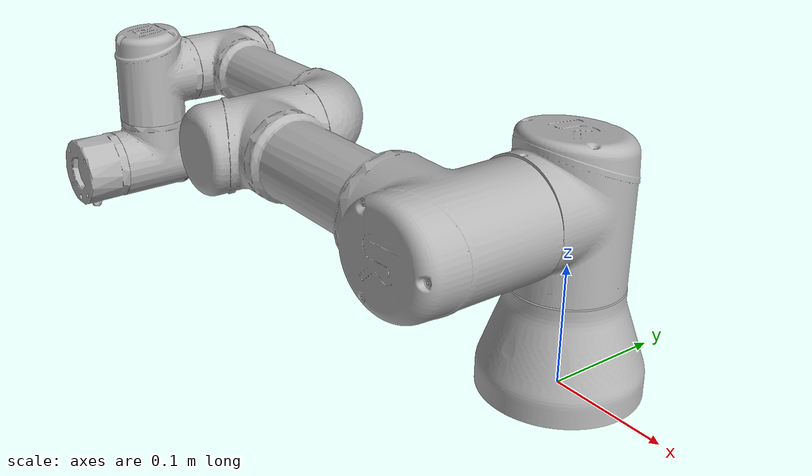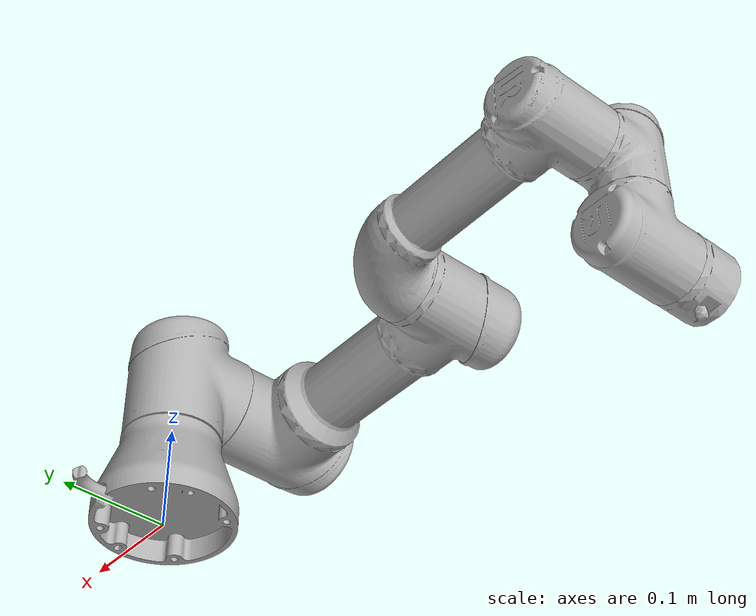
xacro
<?xml version="1.0"?>
<robot xmlns:xacro="http://www.ros.org/wiki/xacro" name="READY_UR3" >
  <!-- common stuff -->
  <xacro:include filename="$(find ur_description)/urdf/common.gazebo.xacro" />

  <!-- ur3 -->
  <xacro:include filename="$(find ur_description)/urdf/ur3.urdf.xacro" />

  <!-- arm -->
  <xacro:ur3_robot prefix="" joint_limited="false"/>
</robot>

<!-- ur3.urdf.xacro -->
<robot xmlns:xacro="http://www.ros.org/wiki/xacro">

<!--
  Author: Felix Messmer
-->

  <xacro:include filename="$(find ur_description)/urdf/ur.transmission.xacro" />
  <xacro:include filename="$(find ur_description)/urdf/ur.gazebo.xacro" />

  <property name="pi" value="3.14159265" />

  <!-- Inertia parameters -->
  <property name="base_mass" value="2.0" />  <!-- This mass might be incorrect -->
  <property name="shoulder_mass" value="2.0" />
  <property name="upper_arm_mass" value="3.42" />
  <property name="forearm_mass" value="1.26" />
  <property name="wrist_1_mass" value="0.8" />
  <property name="wrist_2_mass" value="0.8" />
  <property name="wrist_3_mass" value="0.35" />

  <property name="shoulder_cog" value="0.0 -0.02 0.0" />
  <property name="upper_arm_cog" value="0.13 0.0 0.1157" />
  <property name="forearm_cog" value="0.05 0.0 0.0238" />
  <property name="wrist_1_cog" value="0.0 0.0 0.01" />
  <property name="wrist_2_cog" value="0.0 0.0 0.01" />
  <property name="wrist_3_cog" value="0.0 0.0 -0.02" />

  <!-- Kinematic model -->
  <!-- Properties from urcontrol.conf -->
  <property name="ur3_d1" value="0.1519" />
  <property name="ur3_a2" value="-0.24365" />
  <property name="ur3_a3" value="-0.21325" />
  <property name="ur3_d4" value="0.11235" />
  <property name="ur3_d5" value="0.08535" />
  <property name="ur3_d6" value="0.0819" />

  <!-- Arbitrary offsets for shoulder/elbow joints -->
  <property name="shoulder_offset" value="0.1198" />  <!-- measured from model -->
  <property name="elbow_offset" value="-0.0925" /> <!-- measured from model -->

  <!-- link lengths used in model -->
  <property name="shoulder_height" value="${ur3_d1}" />
  <property name="upper_arm_length" value="${-ur3_a2}" />
  <property name="forearm_length" value="${-ur3_a3}" />
  <property name="wrist_1_length" value="${ur3_d4 - elbow_offset - shoulder_offset}" />
  <property name="wrist_2_length" value="${ur3_d5}" />
  <property name="wrist_3_length" value="${ur3_d6}" />

  <xacro:macro name="cylinder_inertial" params="radius length mass *origin">
    <inertial>
      <mass value="${mass}" />
      <insert_block name="origin" />
      <inertia ixx="${0.0833333 * mass * (3 * radius * radius + length * length)}" ixy="0.0" ixz="0.0"
        iyy="${0.0833333 * mass * (3 * radius * radius + length * length)}" iyz="0.0"
        izz="${0.5 * mass * radius * radius}" />
    </inertial>
  </xacro:macro>

  <xacro:macro name="ur3_robot" params="prefix joint_limited">

    <link name="${prefix}base_link" >
      <visual>
        <geometry>
          <mesh filename="package://ur_description/meshes/ur3/visual/base.dae"/>
        </geometry>
        <material name="LightGrey">
          <color rgba="0.7 0.7 0.7 1.0"/>
        </material>
      </visual>
      <collision>
        <geometry>
          <mesh filename="package://ur_description/meshes/ur3/collision/base.stl"/>
        </geometry>
      </collision>
      <xacro:cylinder_inertial radius="0.075" length="0.038" mass="${base_mass}">
        <origin xyz="0.0 0.0 0.0" rpy="0 0 0" />
      </xacro:cylinder_inertial>
    </link>

    <joint name="${prefix}shoulder_pan_joint" type="revolute">
      <parent link="${prefix}base_link" />
      <child link = "${prefix}shoulder_link" />
      <origin xyz="0.0 0.0 ${shoulder_height}" rpy="0.0 0.0 0.0" />
      <axis xyz="0 0 1" />
      <xacro:unless value="${joint_limited}">
        <limit lower="${-2.0 * pi}" upper="${2.0 * pi}" effort="330.0" velocity="2.16"/>
      </xacro:unless>
      <xacro:if value="${joint_limited}">
        <limit lower="${-pi}" upper="${pi}" effort="330.0" velocity="2.16"/>
      </xacro:if>
      <dynamics damping="0.0" friction="0.0"/>
    </joint>

    <link name="${prefix}shoulder_link">
      <visual>
        <geometry>
          <mesh filename="package://ur_description/meshes/ur3/visual/shoulder.dae"/>
        </geometry>
        <material name="LightGrey">
          <color rgba="0.7 0.7 0.7 1.0"/>
        </material>
      </visual>
      <collision>
        <geometry>
          <mesh filename="package://ur_description/meshes/ur3/collision/shoulder.stl"/>
        </geometry>
      </collision>
      <xacro:cylinder_inertial radius="0.075" length="0.178" mass="${shoulder_mass}">
        <origin xyz="0.0 0.0 0.0" rpy="0 0 0" />
      </xacro:cylinder_inertial>
    </link>

    <joint name="${prefix}shoulder_lift_joint" type="revolute">
      <parent link="${prefix}shoulder_link" />
      <child link = "${prefix}upper_arm_link" />
      <origin xyz="0.0 ${shoulder_offset} 0.0" rpy="0.0 ${pi / 2.0} 0.0" />
      <axis xyz="0 1 0" />
      <xacro:unless value="${joint_limited}">
        <limit lower="${-2.0 * pi}" upper="${2.0 * pi}" effort="330.0" velocity="2.16"/>
      </xacro:unless>
      <xacro:if value="${joint_limited}">
        <limit lower="${-pi}" upper="${pi}" effort="330.0" velocity="2.16"/>
      </xacro:if>
      <dynamics damping="0.0" friction="0.0"/>
    </joint>

    <link name="${prefix}upper_arm_link">
      <visual>
        <geometry>
          <mesh filename="package://ur_description/meshes/ur3/visual/upperarm.dae"/>
        </geometry>
        <material name="LightGrey">
          <color rgba="0.7 0.7 0.7 1.0"/>
        </material>
      </visual>
      <collision>
        <geometry>
          <mesh filename="package://ur_description/meshes/ur3/collision/upperarm.stl"/>
        </geometry>
      </collision>
      <xacro:cylinder_inertial radius="0.075" length="${-ur3_a2}" mass="${upper_arm_mass}">
        <origin xyz="0.0 0.0 ${-ur3_a2/2.0}" rpy="0 0 0" />
      </xacro:cylinder_inertial>
    </link>

    <joint name="${prefix}elbow_joint" type="revolute">
      <parent link="${prefix}upper_arm_link" />
      <child link = "${prefix}forearm_link" />
      <origin xyz="0.0 ${elbow_offset} ${upper_arm_length}" rpy="0.0 0.0 0.0" />
      <axis xyz="0 1 0" />
      <xacro:unless value="${joint_limited}">
        <limit lower="${-2.0 * pi}" upper="${2.0 * pi}" effort="150.0" velocity="3.15"/>
      </xacro:unless>
      <xacro:if value="${joint_limited}">
        <limit lower="${-pi}" upper="${pi}" effort="150.0" velocity="3.15"/>
      </xacro:if>
      <dynamics damping="0.0" friction="0.0"/>
    </joint>

    <link name="${prefix}forearm_link">
      <visual>
         <geometry>
          <mesh filename="package://ur_description/meshes/ur3/visual/forearm.dae"/>
        </geometry>
        <material name="LightGrey">
          <color rgba="0.7 0.7 0.7 1.0"/>
        </material>
      </visual>
      <collision>
        <geometry>
          <mesh filename="package://ur_description/meshes/ur3/collision/forearm.stl"/>
        </geometry>
      </collision>
      <xacro:cylinder_inertial radius="0.075" length="${-ur3_a3}" mass="${forearm_mass}">
        <origin xyz="0.0 0.0 ${-ur3_a3/2.0}" rpy="0 0 0" />
      </xacro:cylinder_inertial>
    </link>

    <joint name="${prefix}wrist_1_joint" type="revolute">
      <parent link="${prefix}forearm_link" />
      <child link = "${prefix}wrist_1_link" />
      <origin xyz="0.0 0.0 ${forearm_length}" rpy="0.0 ${pi / 2.0} 0.0" />
      <axis xyz="0 1 0" />
      <xacro:unless value="${joint_limited}">
        <limit lower="${-2.0 * pi}" upper="${2.0 * pi}" effort="54.0" velocity="3.2"/>
      </xacro:unless>
      <xacro:if value="${joint_limited}">
        <limit lower="${-pi}" upper="${pi}" effort="54.0" velocity="3.2"/>
      </xacro:if>
      <dynamics damping="0.0" friction="0.0"/>
    </joint>

    <link name="${prefix}wrist_1_link">
      <visual>
        <geometry>
          <mesh filename="package://ur_description/meshes/ur3/visual/wrist1.dae"/>
        </geometry>
        <material name="LightGrey">
          <color rgba="0.7 0.7 0.7 1.0"/>
        </material>
      </visual>
      <collision>
        <geometry>
          <mesh filename="package://ur_description/meshes/ur3/collision/wrist1.stl"/>
        </geometry>
      </collision>
      <xacro:cylinder_inertial radius="0.075" length="0.12" mass="${wrist_1_mass}">
        <origin xyz="0.0 0.0 0.0" rpy="0 0 0" />
      </xacro:cylinder_inertial>
    </link>

    <joint name="${prefix}wrist_2_joint" type="revolute">
      <parent link="${prefix}wrist_1_link" />
      <child link = "${prefix}wrist_2_link" />
      <origin xyz="0.0 ${wrist_1_length} 0.0" rpy="0.0 0.0 0.0" />
      <axis xyz="0 0 1" />
      <xacro:unless value="${joint_limited}">
        <limit lower="${-2.0 * pi}" upper="${2.0 * pi}" effort="54.0" velocity="3.2"/>
      </xacro:unless>
      <xacro:if value="${joint_limited}">
        <limit lower="${-pi}" upper="${pi}" effort="54.0" velocity="3.2"/>
      </xacro:if>
      <dynamics damping="0.0" friction="0.0"/>
    </joint>

    <link name="${prefix}wrist_2_link">
      <visual>
        <geometry>
          <mesh filename="package://ur_description/meshes/ur3/visual/wrist2.dae"/>
        </geometry>
        <material name="LightGrey">
          <color rgba="0.7 0.7 0.7 1.0"/>
        </material>
      </visual>
      <collision>
        <geometry>
          <mesh filename="package://ur_description/meshes/ur3/collision/wrist2.stl"/>
        </geometry>
      </collision>
      <xacro:cylinder_inertial radius="0.075" length="0.12" mass="${wrist_2_mass}">
        <origin xyz="0.0 0.0 0.0" rpy="0 0 0" />
      </xacro:cylinder_inertial>
    </link>

    <joint name="${prefix}wrist_3_joint" type="revolute">
      <parent link="${prefix}wrist_2_link" />
      <child link = "${prefix}wrist_3_link" />
      <origin xyz="0.0 0.0 ${wrist_2_length}" rpy="0.0 0.0 0.0" />
      <axis xyz="0 1 0" />
      <xacro:unless value="${joint_limited}">
        <limit lower="${-2.0 * pi}" upper="${2.0 * pi}" effort="54.0" velocity="3.2"/>
      </xacro:unless>
      <xacro:if value="${joint_limited}">
        <limit lower="${-pi}" upper="${pi}" effort="54.0" velocity="3.2"/>
      </xacro:if>
      <dynamics damping="0.0" friction="0.0"/>
    </joint>

    <link name="${prefix}wrist_3_link">
      <visual>
        <geometry>
          <mesh filename="package://ur_description/meshes/ur3/visual/wrist3.dae"/>
        </geometry>
        <material name="LightGrey">
          <color rgba="0.7 0.7 0.7 1.0"/>
        </material>
      </visual>
      <collision>
        <geometry>
          <mesh filename="package://ur_description/meshes/ur3/collision/wrist3.stl"/>
        </geometry>
      </collision>
      <xacro:cylinder_inertial radius="0.075" length="0.12" mass="${wrist_3_mass}">
        <origin xyz="0.0 0.0 0.0" rpy="0 0 0" />
      </xacro:cylinder_inertial>
    </link>

    <joint name="${prefix}ee_fixed_joint" type="fixed">
      <parent link="${prefix}wrist_3_link" />
      <child link = "${prefix}ee_link" />
      <origin xyz="0.0 ${wrist_3_length} 0.0" rpy="0.0 0.0 ${pi/2.0}" />
    </joint>

    <link name="${prefix}ee_link">
      <collision>
        <geometry>
          <box size="0.01 0.01 0.01"/>
        </geometry>
        <origin rpy="0 0 0" xyz="-0.01 0 0"/>
      </collision>
    </link>

    <xacro:ur_arm_transmission prefix="${prefix}" />
    <xacro:ur_arm_gazebo prefix="${prefix}" />

    <!-- ROS base_link to UR 'Base' Coordinates transform -->
    <link name="${prefix}base"/>
    <joint name="${prefix}base_link-base_fixed_joint" type="fixed">
      <!-- NOTE: this rotation is only needed as long as base_link itself is
                 not corrected wrt the real robot (ie: rotated over 180
                 degrees)
      -->
      <origin xyz="0 0 0" rpy="0 0 ${-pi}"/>
      <parent link="${prefix}base"/>
      <child link="${prefix}base_link"/>
    </joint>

    <!-- Frame coincident with all-zeros TCP on UR controller -->
    <link name="${prefix}tool0"/>
    <joint name="${prefix}wrist_3_link-tool0_fixed_joint" type="fixed">
      <origin xyz="0 ${wrist_3_length} 0" rpy="${pi/-2.0} 0 0"/>
      <parent link="${prefix}wrist_3_link"/>
      <child link="${prefix}tool0"/>
    </joint>

  </xacro:macro>
</robot>
